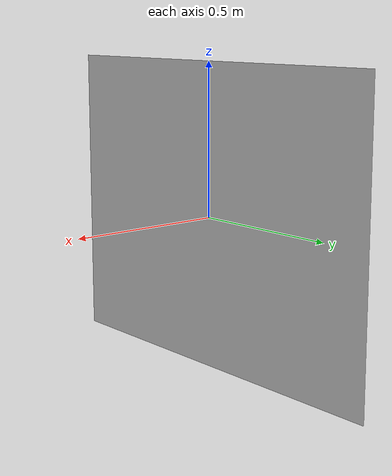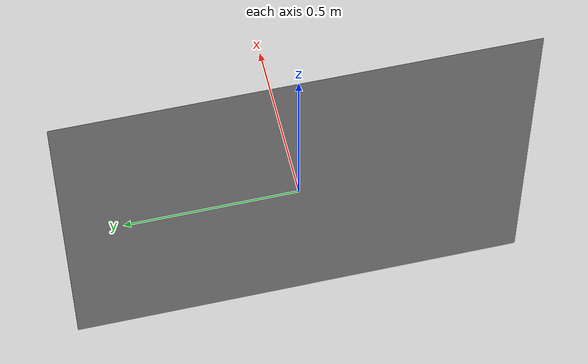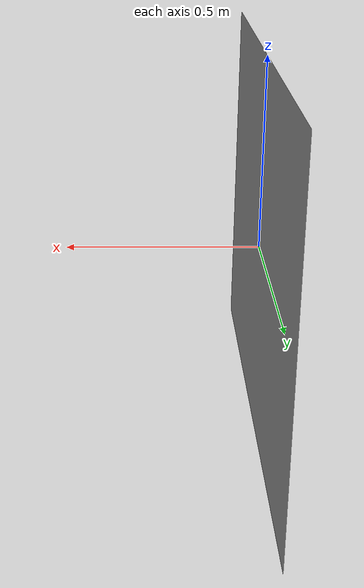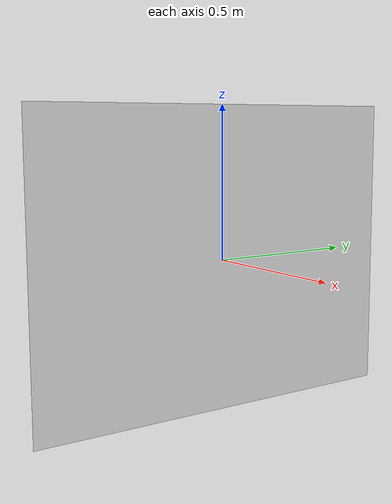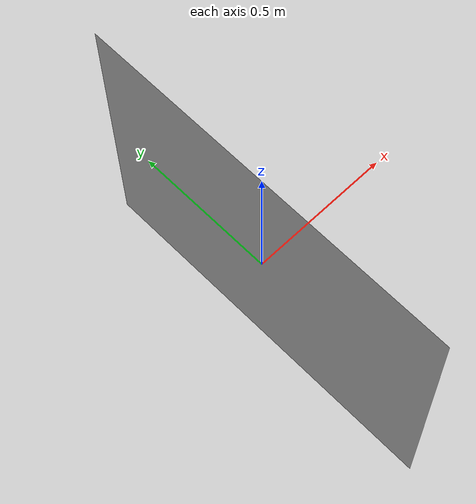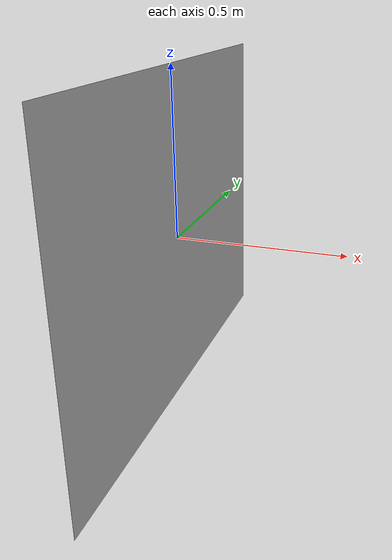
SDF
<?xml version='1.0'?>
<sdf version='1.6'>
  <model name='charuco'>
    <link name='link_0'>
      <inertial>
        <mass>1</mass>
        <inertia>
          <ixx>0.166667</ixx>
          <ixy>0</ixy>
          <ixz>0</ixz>
          <iyy>0.166667</iyy>
          <iyz>0</iyz>
          <izz>0.166667</izz>
        </inertia>
        <pose frame=''>0 0 0 0 -0 0</pose>
      </inertial>
      <pose frame=''>0 0 0 0 -0 0</pose>
      <gravity>0</gravity>
      <self_collide>0</self_collide>
      <kinematic>0</kinematic>
      <enable_wind>0</enable_wind>
      <visual name='visual'>
        <pose frame=''>0 0 0 0 -0 0</pose>
        <geometry>
          <mesh>
            <uri>/home/berkcan/model_editor_models/charuco/meshes/charuco.dae</uri>
            <scale>1 1 1</scale>
          </mesh>
        </geometry>
        <material>
          <script>
            <uri>/home/berkcan/model_editor_models/charuco/materials/scripts/charuco.material</uri>
            <name>charuco</name>
          </script>
          <lighting>1</lighting>
        </material>
        <transparency>0</transparency>
        <cast_shadows>1</cast_shadows>
      </visual>
    </link>
    <static>1</static>
    <allow_auto_disable>1</allow_auto_disable>
  </model>
</sdf>
